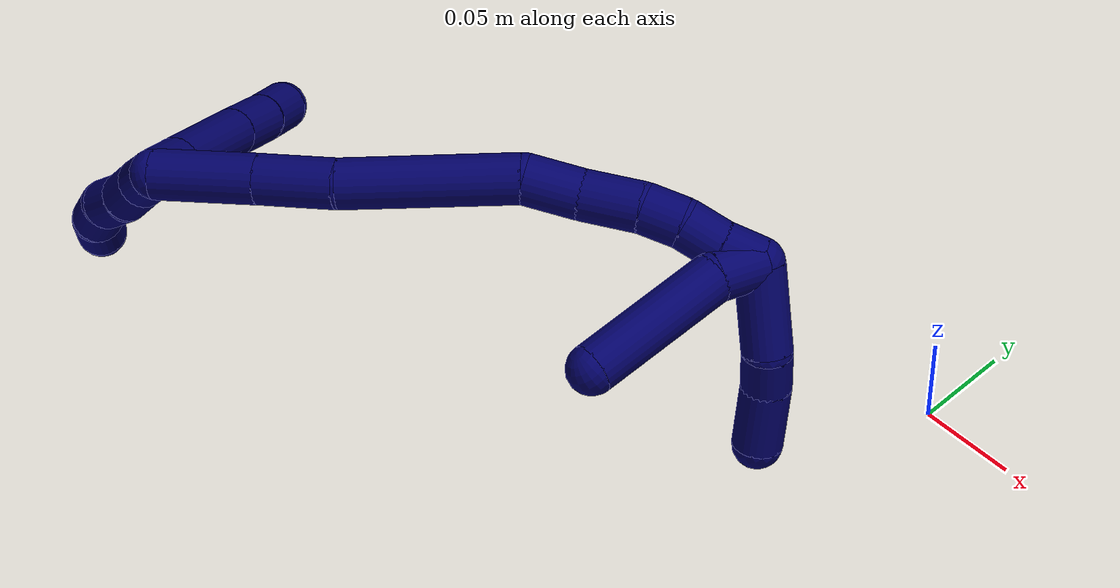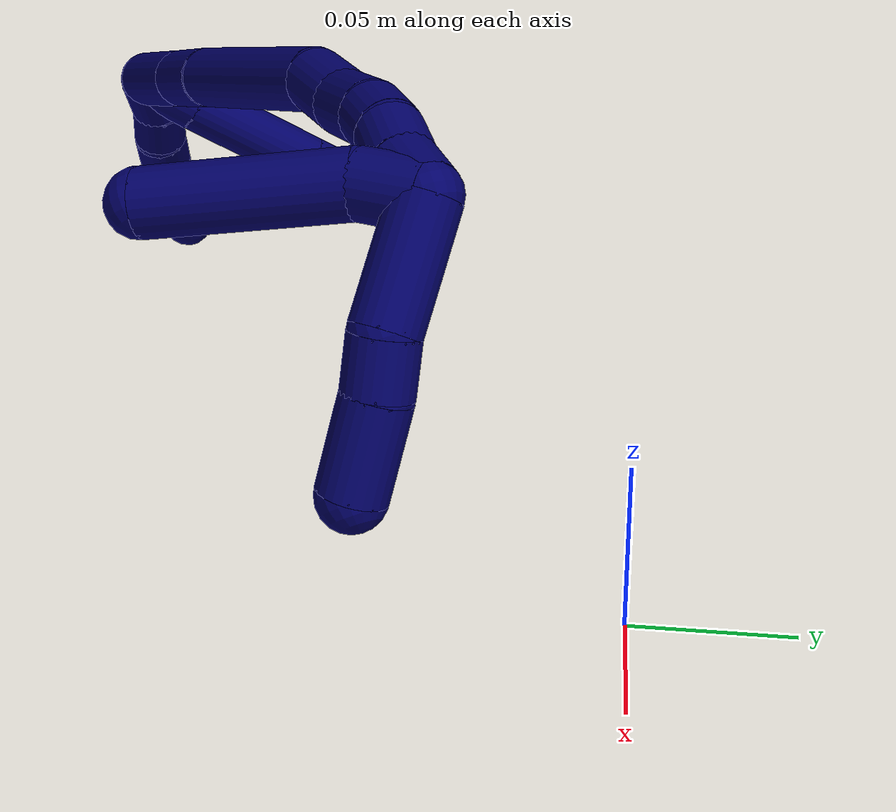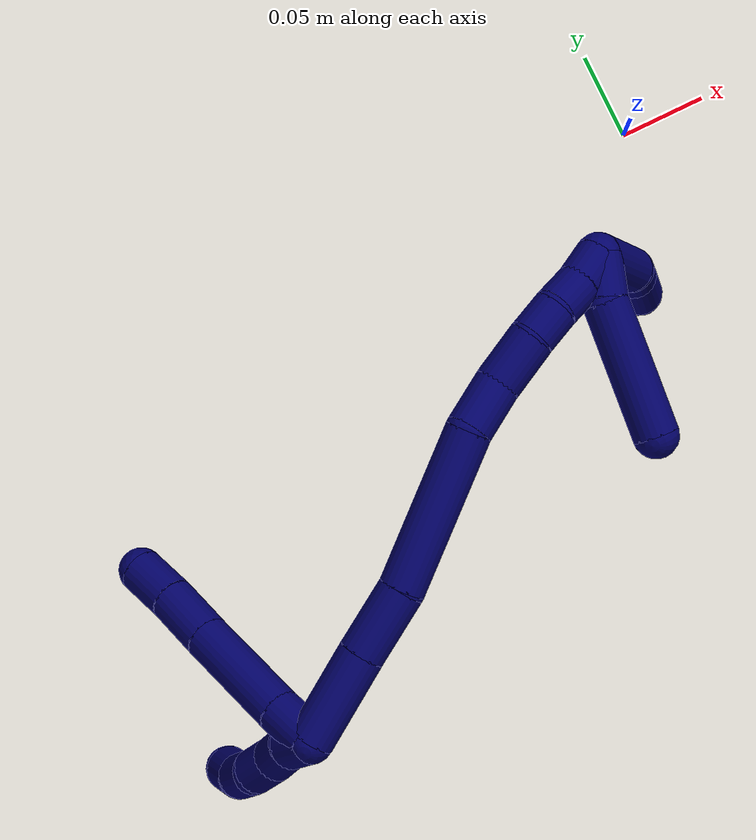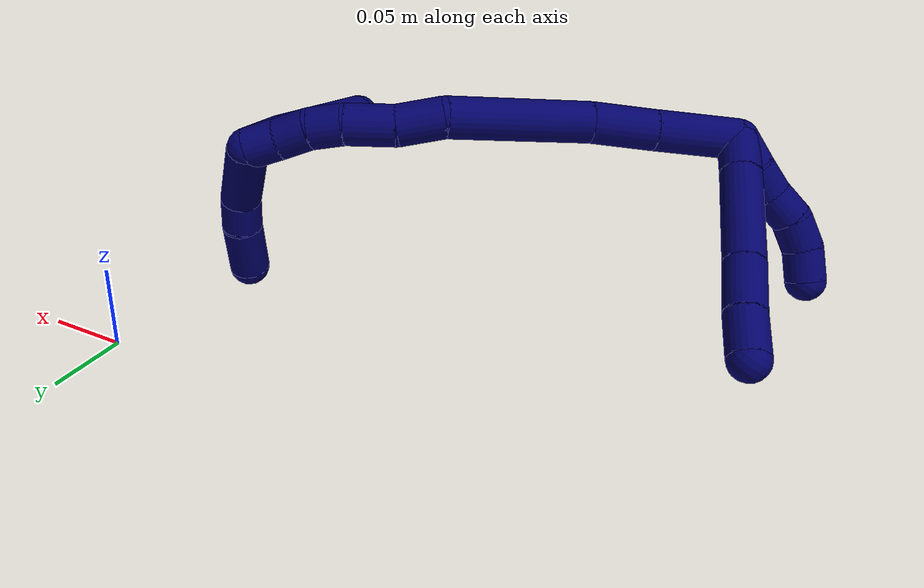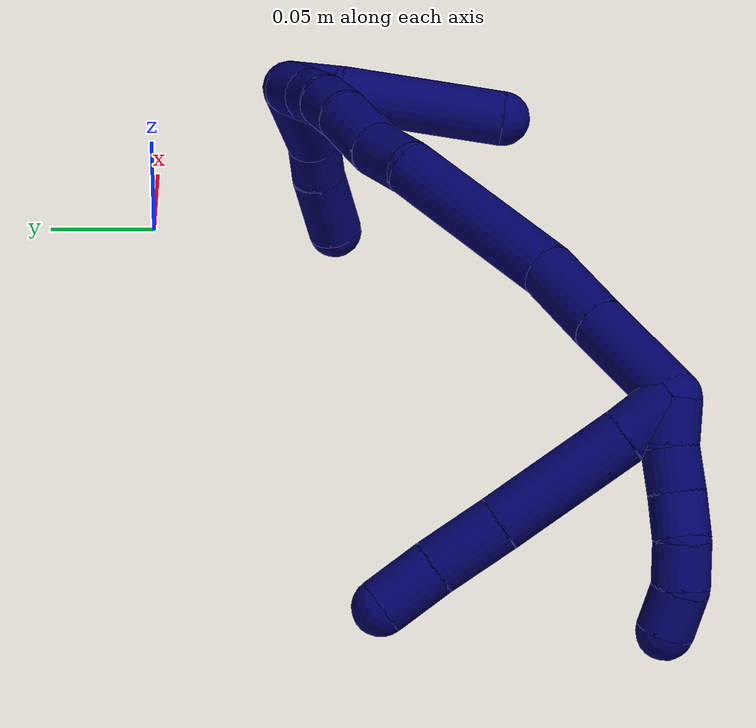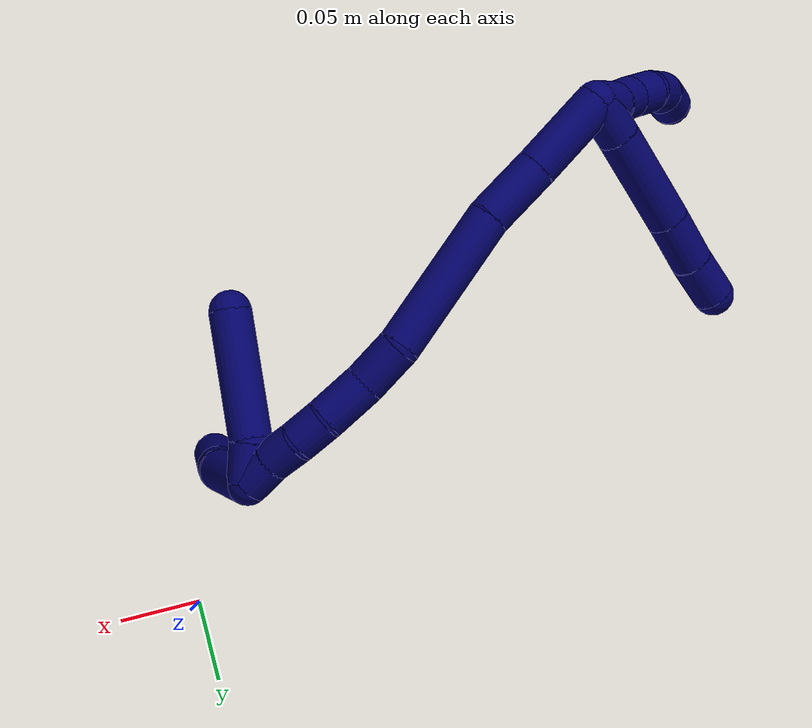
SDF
<sdf version="1.7">
 <world name="default">
  <model name="7">
   <static>0</static>
   <link name="7">
    <collision name="collision-cylinder-e_1_2_8">
     <pose>-0.007133 0.008145 -0.007088 -2.28689 -0.583856 1.16656</pose>
     <geometry><cylinder><radius>0.0125</radius><length>0.025881</length></cylinder></geometry>
     <surface>
      <friction><ode><mu>1.16</mu><mu2>1.16</mu2><slip1>0</slip1><slip2>0</slip2></ode></friction>
      <contact><ode><kp>1e+06</kp><kd>1</kd><max_vel>0</max_vel><min_depth>0.001</min_depth></ode></contact>
     </surface>
    </collision>
    <visual name="visual-cylinder-e_1_2_8">
     <pose>-0.007133 0.008145 -0.007088 -2.28689 -0.583856 1.16656</pose>
     <geometry><cylinder><radius>0.0125</radius><length>0.025881</length></cylinder></geometry>
     <material><ambient>0.003922 0 0.403922 1</ambient></material>
    </visual>
    <collision name="collision-cylinder-e_2_8_9">
     <pose>-0.030525 0.037194 -0.031626 -2.26641 -0.53824 1.06538</pose>
     <geometry><cylinder><radius>0.0125</radius><length>0.063429</length></cylinder></geometry>
     <surface>
      <friction><ode><mu>1.16</mu><mu2>1.16</mu2><slip1>0</slip1><slip2>0</slip2></ode></friction>
      <contact><ode><kp>1e+06</kp><kd>1</kd><max_vel>0</max_vel><min_depth>0.001</min_depth></ode></contact>
     </surface>
    </collision>
    <visual name="visual-cylinder-e_2_8_9">
     <pose>-0.030525 0.037194 -0.031626 -2.26641 -0.53824 1.06538</pose>
     <geometry><cylinder><radius>0.0125</radius><length>0.063429</length></cylinder></geometry>
     <material><ambient>0.003922 0 0.403922 1</ambient></material>
    </visual>
    <collision name="collision-cylinder-e_3_9_10">
     <pose>-0.054893 0.069052 -0.058295 -2.27033 -0.515457 1.03055</pose>
     <geometry><cylinder><radius>0.0125</radius><length>0.032909</length></cylinder></geometry>
     <surface>
      <friction><ode><mu>1.16</mu><mu2>1.16</mu2><slip1>0</slip1><slip2>0</slip2></ode></friction>
      <contact><ode><kp>1e+06</kp><kd>1</kd><max_vel>0</max_vel><min_depth>0.001</min_depth></ode></contact>
     </surface>
    </collision>
    <visual name="visual-cylinder-e_3_9_10">
     <pose>-0.054893 0.069052 -0.058295 -2.27033 -0.515457 1.03055</pose>
     <geometry><cylinder><radius>0.0125</radius><length>0.032909</length></cylinder></geometry>
     <material><ambient>0.003922 0 0.403922 1</ambient></material>
    </visual>
    <collision name="collision-cylinder-e_4_10_6">
     <pose>-0.070568 0.08901 -0.074906 -2.2583 -0.575835 1.11918</pose>
     <geometry><cylinder><radius>0.0125</radius><length>0.027781</length></cylinder></geometry>
     <surface>
      <friction><ode><mu>1.16</mu><mu2>1.16</mu2><slip1>0</slip1><slip2>0</slip2></ode></friction>
      <contact><ode><kp>1e+06</kp><kd>1</kd><max_vel>0</max_vel><min_depth>0.001</min_depth></ode></contact>
     </surface>
    </collision>
    <visual name="visual-cylinder-e_4_10_6">
     <pose>-0.070568 0.08901 -0.074906 -2.2583 -0.575835 1.11918</pose>
     <geometry><cylinder><radius>0.0125</radius><length>0.027781</length></cylinder></geometry>
     <material><ambient>0.003922 0 0.403922 1</ambient></material>
    </visual>
    <collision name="collision-cylinder-e_1_2_11">
     <pose>-0.009047 -0.000912 -0.004161 2.9258 -1.13075 -2.80342</pose>
     <geometry><cylinder><radius>0.0125</radius><length>0.02</length></cylinder></geometry>
     <surface>
      <friction><ode><mu>1.16</mu><mu2>1.16</mu2><slip1>0</slip1><slip2>0</slip2></ode></friction>
      <contact><ode><kp>1e+06</kp><kd>1</kd><max_vel>0</max_vel><min_depth>0.001</min_depth></ode></contact>
     </surface>
    </collision>
    <visual name="visual-cylinder-e_1_2_11">
     <pose>-0.009047 -0.000912 -0.004161 2.9258 -1.13075 -2.80342</pose>
     <geometry><cylinder><radius>0.0125</radius><length>0.02</length></cylinder></geometry>
     <material><ambient>0.003922 0 0.403922 1</ambient></material>
    </visual>
    <collision name="collision-cylinder-e_2_11_12">
     <pose>-0.026769 -0.005015 -0.01214 2.44545 -1.04993 -2.02225</pose>
     <geometry><cylinder><radius>0.0125</radius><length>0.02</length></cylinder></geometry>
     <surface>
      <friction><ode><mu>1.16</mu><mu2>1.16</mu2><slip1>0</slip1><slip2>0</slip2></ode></friction>
      <contact><ode><kp>1e+06</kp><kd>1</kd><max_vel>0</max_vel><min_depth>0.001</min_depth></ode></contact>
     </surface>
    </collision>
    <visual name="visual-cylinder-e_2_11_12">
     <pose>-0.026769 -0.005015 -0.01214 2.44545 -1.04993 -2.02225</pose>
     <geometry><cylinder><radius>0.0125</radius><length>0.02</length></cylinder></geometry>
     <material><ambient>0.003922 0 0.403922 1</ambient></material>
    </visual>
    <collision name="collision-cylinder-e_3_12_13">
     <pose>-0.044935 -0.010273 -0.01833 2.42476 -1.25089 -2.18457</pose>
     <geometry><cylinder><radius>0.0125</radius><length>0.02</length></cylinder></geometry>
     <surface>
      <friction><ode><mu>1.16</mu><mu2>1.16</mu2><slip1>0</slip1><slip2>0</slip2></ode></friction>
      <contact><ode><kp>1e+06</kp><kd>1</kd><max_vel>0</max_vel><min_depth>0.001</min_depth></ode></contact>
     </surface>
    </collision>
    <visual name="visual-cylinder-e_3_12_13">
     <pose>-0.044935 -0.010273 -0.01833 2.42476 -1.25089 -2.18457</pose>
     <geometry><cylinder><radius>0.0125</radius><length>0.02</length></cylinder></geometry>
     <material><ambient>0.003922 0 0.403922 1</ambient></material>
    </visual>
    <collision name="collision-cylinder-e_4_13_14">
     <pose>-0.062645 -0.014234 -0.026074 2.80254 -0.964492 -2.50952</pose>
     <geometry><cylinder><radius>0.0125</radius><length>0.02</length></cylinder></geometry>
     <surface>
      <friction><ode><mu>1.16</mu><mu2>1.16</mu2><slip1>0</slip1><slip2>0</slip2></ode></friction>
      <contact><ode><kp>1e+06</kp><kd>1</kd><max_vel>0</max_vel><min_depth>0.001</min_depth></ode></contact>
     </surface>
    </collision>
    <visual name="visual-cylinder-e_4_13_14">
     <pose>-0.062645 -0.014234 -0.026074 2.80254 -0.964492 -2.50952</pose>
     <geometry><cylinder><radius>0.0125</radius><length>0.02</length></cylinder></geometry>
     <material><ambient>0.003922 0 0.403922 1</ambient></material>
    </visual>
    <collision name="collision-cylinder-e_5_14_5">
     <pose>-0.077563 -0.015771 -0.038863 -3.09333 -0.734229 3.01622</pose>
     <geometry><cylinder><radius>0.0125</radius><length>0.02</length></cylinder></geometry>
     <surface>
      <friction><ode><mu>1.16</mu><mu2>1.16</mu2><slip1>0</slip1><slip2>0</slip2></ode></friction>
      <contact><ode><kp>1e+06</kp><kd>1</kd><max_vel>0</max_vel><min_depth>0.001</min_depth></ode></contact>
     </surface>
    </collision>
    <visual name="visual-cylinder-e_5_14_5">
     <pose>-0.077563 -0.015771 -0.038863 -3.09333 -0.734229 3.01622</pose>
     <geometry><cylinder><radius>0.0125</radius><length>0.02</length></cylinder></geometry>
     <material><ambient>0.003922 0 0.403922 1</ambient></material>
    </visual>
    <collision name="collision-cylinder-e_1_2_15">
     <pose>0.020755 0.011474 -0.011412 -2.35348 0.908525 -1.73087</pose>
     <geometry><cylinder><radius>0.0125</radius><length>0.052637</length></cylinder></geometry>
     <surface>
      <friction><ode><mu>1.16</mu><mu2>1.16</mu2><slip1>0</slip1><slip2>0</slip2></ode></friction>
      <contact><ode><kp>1e+06</kp><kd>1</kd><max_vel>0</max_vel><min_depth>0.001</min_depth></ode></contact>
     </surface>
    </collision>
    <visual name="visual-cylinder-e_1_2_15">
     <pose>0.020755 0.011474 -0.011412 -2.35348 0.908525 -1.73087</pose>
     <geometry><cylinder><radius>0.0125</radius><length>0.052637</length></cylinder></geometry>
     <material><ambient>0.003922 0 0.403922 1</ambient></material>
    </visual>
    <collision name="collision-cylinder-e_2_15_16">
     <pose>0.057364 0.031189 -0.031272 -2.36863 0.93095 -1.77974</pose>
     <geometry><cylinder><radius>0.0125</radius><length>0.039528</length></cylinder></geometry>
     <surface>
      <friction><ode><mu>1.16</mu><mu2>1.16</mu2><slip1>0</slip1><slip2>0</slip2></ode></friction>
      <contact><ode><kp>1e+06</kp><kd>1</kd><max_vel>0</max_vel><min_depth>0.001</min_depth></ode></contact>
     </surface>
    </collision>
    <visual name="visual-cylinder-e_2_15_16">
     <pose>0.057364 0.031189 -0.031272 -2.36863 0.93095 -1.77974</pose>
     <geometry><cylinder><radius>0.0125</radius><length>0.039528</length></cylinder></geometry>
     <material><ambient>0.003922 0 0.403922 1</ambient></material>
    </visual>
    <collision name="collision-cylinder-e_3_16_17">
     <pose>0.104594 0.063355 -0.060174 -2.27814 0.783774 -1.46231</pose>
     <geometry><cylinder><radius>0.0125</radius><length>0.088889</length></cylinder></geometry>
     <surface>
      <friction><ode><mu>1.16</mu><mu2>1.16</mu2><slip1>0</slip1><slip2>0</slip2></ode></friction>
      <contact><ode><kp>1e+06</kp><kd>1</kd><max_vel>0</max_vel><min_depth>0.001</min_depth></ode></contact>
     </surface>
    </collision>
    <visual name="visual-cylinder-e_3_16_17">
     <pose>0.104594 0.063355 -0.060174 -2.27814 0.783774 -1.46231</pose>
     <geometry><cylinder><radius>0.0125</radius><length>0.088889</length></cylinder></geometry>
     <material><ambient>0.003922 0 0.403922 1</ambient></material>
    </visual>
    <collision name="collision-cylinder-e_4_17_18">
     <pose>0.145326 0.091892 -0.090323 -2.69762 0.716942 -2.05718</pose>
     <geometry><cylinder><radius>0.0125</radius><length>0.02848</length></cylinder></geometry>
     <surface>
      <friction><ode><mu>1.16</mu><mu2>1.16</mu2><slip1>0</slip1><slip2>0</slip2></ode></friction>
      <contact><ode><kp>1e+06</kp><kd>1</kd><max_vel>0</max_vel><min_depth>0.001</min_depth></ode></contact>
     </surface>
    </collision>
    <visual name="visual-cylinder-e_4_17_18">
     <pose>0.145326 0.091892 -0.090323 -2.69762 0.716942 -2.05718</pose>
     <geometry><cylinder><radius>0.0125</radius><length>0.02848</length></cylinder></geometry>
     <material><ambient>0.003922 0 0.403922 1</ambient></material>
    </visual>
    <collision name="collision-cylinder-e_5_18_19">
     <pose>0.166602 0.101188 -0.108057 -2.61391 0.907883 -2.13031</pose>
     <geometry><cylinder><radius>0.0125</radius><length>0.030244</length></cylinder></geometry>
     <surface>
      <friction><ode><mu>1.16</mu><mu2>1.16</mu2><slip1>0</slip1><slip2>0</slip2></ode></friction>
      <contact><ode><kp>1e+06</kp><kd>1</kd><max_vel>0</max_vel><min_depth>0.001</min_depth></ode></contact>
     </surface>
    </collision>
    <visual name="visual-cylinder-e_5_18_19">
     <pose>0.166602 0.101188 -0.108057 -2.61391 0.907883 -2.13031</pose>
     <geometry><cylinder><radius>0.0125</radius><length>0.030244</length></cylinder></geometry>
     <material><ambient>0.003922 0 0.403922 1</ambient></material>
    </visual>
    <collision name="collision-cylinder-e_6_19_20">
     <pose>0.185708 0.107965 -0.122851 -2.84145 0.793507 -2.44888</pose>
     <geometry><cylinder><radius>0.0125</radius><length>0.020163</length></cylinder></geometry>
     <surface>
      <friction><ode><mu>1.16</mu><mu2>1.16</mu2><slip1>0</slip1><slip2>0</slip2></ode></friction>
      <contact><ode><kp>1e+06</kp><kd>1</kd><max_vel>0</max_vel><min_depth>0.001</min_depth></ode></contact>
     </surface>
    </collision>
    <visual name="visual-cylinder-e_6_19_20">
     <pose>0.185708 0.107965 -0.122851 -2.84145 0.793507 -2.44888</pose>
     <geometry><cylinder><radius>0.0125</radius><length>0.020163</length></cylinder></geometry>
     <material><ambient>0.003922 0 0.403922 1</ambient></material>
    </visual>
    <collision name="collision-cylinder-e_7_20_21">
     <pose>0.198865 0.110869 -0.137623 -3.04045 0.637692 -2.83731</pose>
     <geometry><cylinder><radius>0.0125</radius><length>0.020058</length></cylinder></geometry>
     <surface>
      <friction><ode><mu>1.16</mu><mu2>1.16</mu2><slip1>0</slip1><slip2>0</slip2></ode></friction>
      <contact><ode><kp>1e+06</kp><kd>1</kd><max_vel>0</max_vel><min_depth>0.001</min_depth></ode></contact>
     </surface>
    </collision>
    <visual name="visual-cylinder-e_7_20_21">
     <pose>0.198865 0.110869 -0.137623 -3.04045 0.637692 -2.83731</pose>
     <geometry><cylinder><radius>0.0125</radius><length>0.020058</length></cylinder></geometry>
     <material><ambient>0.003922 0 0.403922 1</ambient></material>
    </visual>
    <collision name="collision-cylinder-e_8_21_1">
     <pose>0.210711 0.113926 -0.153415 -2.86072 0.628014 -2.32046</pose>
     <geometry><cylinder><radius>0.0125</radius><length>0.020002</length></cylinder></geometry>
     <surface>
      <friction><ode><mu>1.16</mu><mu2>1.16</mu2><slip1>0</slip1><slip2>0</slip2></ode></friction>
      <contact><ode><kp>1e+06</kp><kd>1</kd><max_vel>0</max_vel><min_depth>0.001</min_depth></ode></contact>
     </surface>
    </collision>
    <visual name="visual-cylinder-e_8_21_1">
     <pose>0.210711 0.113926 -0.153415 -2.86072 0.628014 -2.32046</pose>
     <geometry><cylinder><radius>0.0125</radius><length>0.020002</length></cylinder></geometry>
     <material><ambient>0.003922 0 0.403922 1</ambient></material>
    </visual>
    <collision name="collision-cylinder-e_1_1_22">
     <pose>0.213811 0.106178 -0.154759 0.998776 -0.229562 -0.125615</pose>
     <geometry><cylinder><radius>0.0125</radius><length>0.024405</length></cylinder></geometry>
     <surface>
      <friction><ode><mu>1.16</mu><mu2>1.16</mu2><slip1>0</slip1><slip2>0</slip2></ode></friction>
      <contact><ode><kp>1e+06</kp><kd>1</kd><max_vel>0</max_vel><min_depth>0.001</min_depth></ode></contact>
     </surface>
    </collision>
    <visual name="visual-cylinder-e_1_1_22">
     <pose>0.213811 0.106178 -0.154759 0.998776 -0.229562 -0.125615</pose>
     <geometry><cylinder><radius>0.0125</radius><length>0.024405</length></cylinder></geometry>
     <material><ambient>0.003922 0 0.403922 1</ambient></material>
    </visual>
    <collision name="collision-cylinder-e_2_22_4">
     <pose>0.206673 0.060068 -0.138078 1.29434 -0.11563 -0.087429</pose>
     <geometry><cylinder><radius>0.0125</radius><length>0.075595</length></cylinder></geometry>
     <surface>
      <friction><ode><mu>1.16</mu><mu2>1.16</mu2><slip1>0</slip1><slip2>0</slip2></ode></friction>
      <contact><ode><kp>1e+06</kp><kd>1</kd><max_vel>0</max_vel><min_depth>0.001</min_depth></ode></contact>
     </surface>
    </collision>
    <visual name="visual-cylinder-e_2_22_4">
     <pose>0.206673 0.060068 -0.138078 1.29434 -0.11563 -0.087429</pose>
     <geometry><cylinder><radius>0.0125</radius><length>0.075595</length></cylinder></geometry>
     <material><ambient>0.003922 0 0.403922 1</ambient></material>
    </visual>
    <collision name="collision-cylinder-e_1_1_23">
     <pose>0.215202 0.103288 -0.179859 2.53762 -0.061021 -0.195321</pose>
     <geometry><cylinder><radius>0.0125</radius><length>0.045446</length></cylinder></geometry>
     <surface>
      <friction><ode><mu>1.16</mu><mu2>1.16</mu2><slip1>0</slip1><slip2>0</slip2></ode></friction>
      <contact><ode><kp>1e+06</kp><kd>1</kd><max_vel>0</max_vel><min_depth>0.001</min_depth></ode></contact>
     </surface>
    </collision>
    <visual name="visual-cylinder-e_1_1_23">
     <pose>0.215202 0.103288 -0.179859 2.53762 -0.061021 -0.195321</pose>
     <geometry><cylinder><radius>0.0125</radius><length>0.045446</length></cylinder></geometry>
     <material><ambient>0.003922 0 0.403922 1</ambient></material>
    </visual>
    <collision name="collision-cylinder-e_2_23_24">
     <pose>0.210293 0.086016 -0.207107 2.66851 -0.350437 -1.2669</pose>
     <geometry><cylinder><radius>0.0125</radius><length>0.020524</length></cylinder></geometry>
     <surface>
      <friction><ode><mu>1.16</mu><mu2>1.16</mu2><slip1>0</slip1><slip2>0</slip2></ode></friction>
      <contact><ode><kp>1e+06</kp><kd>1</kd><max_vel>0</max_vel><min_depth>0.001</min_depth></ode></contact>
     </surface>
    </collision>
    <visual name="visual-cylinder-e_2_23_24">
     <pose>0.210293 0.086016 -0.207107 2.66851 -0.350437 -1.2669</pose>
     <geometry><cylinder><radius>0.0125</radius><length>0.020524</length></cylinder></geometry>
     <material><ambient>0.003922 0 0.403922 1</ambient></material>
    </visual>
    <collision name="collision-cylinder-e_3_24_3">
     <pose>0.2008 0.072436 -0.228704 2.52692 -0.358461 -1.03737</pose>
     <geometry><cylinder><radius>0.0125</radius><length>0.034029</length></cylinder></geometry>
     <surface>
      <friction><ode><mu>1.16</mu><mu2>1.16</mu2><slip1>0</slip1><slip2>0</slip2></ode></friction>
      <contact><ode><kp>1e+06</kp><kd>1</kd><max_vel>0</max_vel><min_depth>0.001</min_depth></ode></contact>
     </surface>
    </collision>
    <visual name="visual-cylinder-e_3_24_3">
     <pose>0.2008 0.072436 -0.228704 2.52692 -0.358461 -1.03737</pose>
     <geometry><cylinder><radius>0.0125</radius><length>0.034029</length></cylinder></geometry>
     <material><ambient>0.003922 0 0.403922 1</ambient></material>
    </visual>
    <collision name="collision-sphere-3">
     <pose>0.194831 0.063247 -0.241721 0 -0 0</pose>
     <geometry><sphere><radius>0.0125</radius></sphere></geometry>
     <surface>
      <friction><ode><mu>1.16</mu><mu2>1.16</mu2><slip1>0</slip1><slip2>0</slip2></ode></friction>
      <contact><ode><kp>1e+06</kp><kd>1</kd><max_vel>0</max_vel><min_depth>0.001</min_depth></ode></contact>
     </surface>
    </collision>
    <visual name="visual-sphere-3">
     <pose>0.194831 0.063247 -0.241721 0 -0 0</pose>
     <geometry><sphere><radius>0.0125</radius></sphere></geometry>
     <material><ambient>0.003922 0 0.403922 1</ambient></material>
    </visual>
    <collision name="collision-sphere-24">
     <pose>0.20677 0.081624 -0.215687 0 -0 0</pose>
     <geometry><sphere><radius>0.0125</radius></sphere></geometry>
     <surface>
      <friction><ode><mu>1.16</mu><mu2>1.16</mu2><slip1>0</slip1><slip2>0</slip2></ode></friction>
      <contact><ode><kp>1e+06</kp><kd>1</kd><max_vel>0</max_vel><min_depth>0.001</min_depth></ode></contact>
     </surface>
    </collision>
    <visual name="visual-sphere-24">
     <pose>0.20677 0.081624 -0.215687 0 -0 0</pose>
     <geometry><sphere><radius>0.0125</radius></sphere></geometry>
     <material><ambient>0.003922 0 0.403922 1</ambient></material>
    </visual>
    <collision name="collision-sphere-23">
     <pose>0.213816 0.090407 -0.198528 0 -0 0</pose>
     <geometry><sphere><radius>0.0125</radius></sphere></geometry>
     <surface>
      <friction><ode><mu>1.16</mu><mu2>1.16</mu2><slip1>0</slip1><slip2>0</slip2></ode></friction>
      <contact><ode><kp>1e+06</kp><kd>1</kd><max_vel>0</max_vel><min_depth>0.001</min_depth></ode></contact>
     </surface>
    </collision>
    <visual name="visual-sphere-23">
     <pose>0.213816 0.090407 -0.198528 0 -0 0</pose>
     <geometry><sphere><radius>0.0125</radius></sphere></geometry>
     <material><ambient>0.003922 0 0.403922 1</ambient></material>
    </visual>
    <collision name="collision-sphere-4">
     <pose>0.202312 0.023949 -0.12783 0 -0 0</pose>
     <geometry><sphere><radius>0.0125</radius></sphere></geometry>
     <surface>
      <friction><ode><mu>1.16</mu><mu2>1.16</mu2><slip1>0</slip1><slip2>0</slip2></ode></friction>
      <contact><ode><kp>1e+06</kp><kd>1</kd><max_vel>0</max_vel><min_depth>0.001</min_depth></ode></contact>
     </surface>
    </collision>
    <visual name="visual-sphere-4">
     <pose>0.202312 0.023949 -0.12783 0 -0 0</pose>
     <geometry><sphere><radius>0.0125</radius></sphere></geometry>
     <material><ambient>0.003922 0 0.403922 1</ambient></material>
    </visual>
    <collision name="collision-sphere-22">
     <pose>0.211034 0.096187 -0.148326 0 -0 0</pose>
     <geometry><sphere><radius>0.0125</radius></sphere></geometry>
     <surface>
      <friction><ode><mu>1.16</mu><mu2>1.16</mu2><slip1>0</slip1><slip2>0</slip2></ode></friction>
      <contact><ode><kp>1e+06</kp><kd>1</kd><max_vel>0</max_vel><min_depth>0.001</min_depth></ode></contact>
     </surface>
    </collision>
    <visual name="visual-sphere-22">
     <pose>0.211034 0.096187 -0.148326 0 -0 0</pose>
     <geometry><sphere><radius>0.0125</radius></sphere></geometry>
     <material><ambient>0.003922 0 0.403922 1</ambient></material>
    </visual>
    <collision name="collision-sphere-1">
     <pose>0.216587 0.116169 -0.161191 0 -0 0</pose>
     <geometry><sphere><radius>0.0125</radius></sphere></geometry>
     <surface>
      <friction><ode><mu>1.16</mu><mu2>1.16</mu2><slip1>0</slip1><slip2>0</slip2></ode></friction>
      <contact><ode><kp>1e+06</kp><kd>1</kd><max_vel>0</max_vel><min_depth>0.001</min_depth></ode></contact>
     </surface>
    </collision>
    <visual name="visual-sphere-1">
     <pose>0.216587 0.116169 -0.161191 0 -0 0</pose>
     <geometry><sphere><radius>0.0125</radius></sphere></geometry>
     <material><ambient>0.003922 0 0.403922 1</ambient></material>
    </visual>
    <collision name="collision-sphere-21">
     <pose>0.204835 0.111683 -0.145639 0 -0 0</pose>
     <geometry><sphere><radius>0.0125</radius></sphere></geometry>
     <surface>
      <friction><ode><mu>1.16</mu><mu2>1.16</mu2><slip1>0</slip1><slip2>0</slip2></ode></friction>
      <contact><ode><kp>1e+06</kp><kd>1</kd><max_vel>0</max_vel><min_depth>0.001</min_depth></ode></contact>
     </surface>
    </collision>
    <visual name="visual-sphere-21">
     <pose>0.204835 0.111683 -0.145639 0 -0 0</pose>
     <geometry><sphere><radius>0.0125</radius></sphere></geometry>
     <material><ambient>0.003922 0 0.403922 1</ambient></material>
    </visual>
    <collision name="collision-sphere-11">
     <pose>-0.018095 -0.001824 -0.008322 0 -0 0</pose>
     <geometry><sphere><radius>0.0125</radius></sphere></geometry>
     <surface>
      <friction><ode><mu>1.16</mu><mu2>1.16</mu2><slip1>0</slip1><slip2>0</slip2></ode></friction>
      <contact><ode><kp>1e+06</kp><kd>1</kd><max_vel>0</max_vel><min_depth>0.001</min_depth></ode></contact>
     </surface>
    </collision>
    <visual name="visual-sphere-11">
     <pose>-0.018095 -0.001824 -0.008322 0 -0 0</pose>
     <geometry><sphere><radius>0.0125</radius></sphere></geometry>
     <material><ambient>0.003922 0 0.403922 1</ambient></material>
    </visual>
    <collision name="collision-sphere-6">
     <pose>-0.078132 0.098013 -0.082299 0 -0 0</pose>
     <geometry><sphere><radius>0.0125</radius></sphere></geometry>
     <surface>
      <friction><ode><mu>1.16</mu><mu2>1.16</mu2><slip1>0</slip1><slip2>0</slip2></ode></friction>
      <contact><ode><kp>1e+06</kp><kd>1</kd><max_vel>0</max_vel><min_depth>0.001</min_depth></ode></contact>
     </surface>
    </collision>
    <visual name="visual-sphere-6">
     <pose>-0.078132 0.098013 -0.082299 0 -0 0</pose>
     <geometry><sphere><radius>0.0125</radius></sphere></geometry>
     <material><ambient>0.003922 0 0.403922 1</ambient></material>
    </visual>
    <collision name="collision-sphere-10">
     <pose>-0.063004 0.080006 -0.067512 0 -0 0</pose>
     <geometry><sphere><radius>0.0125</radius></sphere></geometry>
     <surface>
      <friction><ode><mu>1.16</mu><mu2>1.16</mu2><slip1>0</slip1><slip2>0</slip2></ode></friction>
      <contact><ode><kp>1e+06</kp><kd>1</kd><max_vel>0</max_vel><min_depth>0.001</min_depth></ode></contact>
     </surface>
    </collision>
    <visual name="visual-sphere-10">
     <pose>-0.063004 0.080006 -0.067512 0 -0 0</pose>
     <geometry><sphere><radius>0.0125</radius></sphere></geometry>
     <material><ambient>0.003922 0 0.403922 1</ambient></material>
    </visual>
    <collision name="collision-sphere-9">
     <pose>-0.046782 0.058098 -0.049077 0 -0 0</pose>
     <geometry><sphere><radius>0.0125</radius></sphere></geometry>
     <surface>
      <friction><ode><mu>1.16</mu><mu2>1.16</mu2><slip1>0</slip1><slip2>0</slip2></ode></friction>
      <contact><ode><kp>1e+06</kp><kd>1</kd><max_vel>0</max_vel><min_depth>0.001</min_depth></ode></contact>
     </surface>
    </collision>
    <visual name="visual-sphere-9">
     <pose>-0.046782 0.058098 -0.049077 0 -0 0</pose>
     <geometry><sphere><radius>0.0125</radius></sphere></geometry>
     <material><ambient>0.003922 0 0.403922 1</ambient></material>
    </visual>
    <collision name="collision-sphere-2">
     <geometry><sphere><radius>0.0125</radius></sphere></geometry>
     <surface>
      <friction><ode><mu>1.16</mu><mu2>1.16</mu2><slip1>0</slip1><slip2>0</slip2></ode></friction>
      <contact><ode><kp>1e+06</kp><kd>1</kd><max_vel>0</max_vel><min_depth>0.001</min_depth></ode></contact>
     </surface>
    </collision>
    <visual name="visual-sphere-2">
     <geometry><sphere><radius>0.0125</radius></sphere></geometry>
     <material><ambient>0.003922 0 0.403922 1</ambient></material>
    </visual>
    <collision name="collision-sphere-19">
     <pose>0.178522 0.105874 -0.116097 0 -0 0</pose>
     <geometry><sphere><radius>0.0125</radius></sphere></geometry>
     <surface>
      <friction><ode><mu>1.16</mu><mu2>1.16</mu2><slip1>0</slip1><slip2>0</slip2></ode></friction>
      <contact><ode><kp>1e+06</kp><kd>1</kd><max_vel>0</max_vel><min_depth>0.001</min_depth></ode></contact>
     </surface>
    </collision>
    <visual name="visual-sphere-19">
     <pose>0.178522 0.105874 -0.116097 0 -0 0</pose>
     <geometry><sphere><radius>0.0125</radius></sphere></geometry>
     <material><ambient>0.003922 0 0.403922 1</ambient></material>
    </visual>
    <collision name="collision-sphere-8">
     <pose>-0.014267 0.01629 -0.014175 0 -0 0</pose>
     <geometry><sphere><radius>0.0125</radius></sphere></geometry>
     <surface>
      <friction><ode><mu>1.16</mu><mu2>1.16</mu2><slip1>0</slip1><slip2>0</slip2></ode></friction>
      <contact><ode><kp>1e+06</kp><kd>1</kd><max_vel>0</max_vel><min_depth>0.001</min_depth></ode></contact>
     </surface>
    </collision>
    <visual name="visual-sphere-8">
     <pose>-0.014267 0.01629 -0.014175 0 -0 0</pose>
     <geometry><sphere><radius>0.0125</radius></sphere></geometry>
     <material><ambient>0.003922 0 0.403922 1</ambient></material>
    </visual>
    <collision name="collision-sphere-12">
     <pose>-0.035442 -0.008207 -0.015959 0 -0 0</pose>
     <geometry><sphere><radius>0.0125</radius></sphere></geometry>
     <surface>
      <friction><ode><mu>1.16</mu><mu2>1.16</mu2><slip1>0</slip1><slip2>0</slip2></ode></friction>
      <contact><ode><kp>1e+06</kp><kd>1</kd><max_vel>0</max_vel><min_depth>0.001</min_depth></ode></contact>
     </surface>
    </collision>
    <visual name="visual-sphere-12">
     <pose>-0.035442 -0.008207 -0.015959 0 -0 0</pose>
     <geometry><sphere><radius>0.0125</radius></sphere></geometry>
     <material><ambient>0.003922 0 0.403922 1</ambient></material>
    </visual>
    <collision name="collision-sphere-13">
     <pose>-0.054428 -0.012339 -0.020701 0 -0 0</pose>
     <geometry><sphere><radius>0.0125</radius></sphere></geometry>
     <surface>
      <friction><ode><mu>1.16</mu><mu2>1.16</mu2><slip1>0</slip1><slip2>0</slip2></ode></friction>
      <contact><ode><kp>1e+06</kp><kd>1</kd><max_vel>0</max_vel><min_depth>0.001</min_depth></ode></contact>
     </surface>
    </collision>
    <visual name="visual-sphere-13">
     <pose>-0.054428 -0.012339 -0.020701 0 -0 0</pose>
     <geometry><sphere><radius>0.0125</radius></sphere></geometry>
     <material><ambient>0.003922 0 0.403922 1</ambient></material>
    </visual>
    <collision name="collision-sphere-14">
     <pose>-0.070863 -0.016129 -0.031448 0 -0 0</pose>
     <geometry><sphere><radius>0.0125</radius></sphere></geometry>
     <surface>
      <friction><ode><mu>1.16</mu><mu2>1.16</mu2><slip1>0</slip1><slip2>0</slip2></ode></friction>
      <contact><ode><kp>1e+06</kp><kd>1</kd><max_vel>0</max_vel><min_depth>0.001</min_depth></ode></contact>
     </surface>
    </collision>
    <visual name="visual-sphere-14">
     <pose>-0.070863 -0.016129 -0.031448 0 -0 0</pose>
     <geometry><sphere><radius>0.0125</radius></sphere></geometry>
     <material><ambient>0.003922 0 0.403922 1</ambient></material>
    </visual>
    <collision name="collision-sphere-5">
     <pose>-0.084263 -0.015413 -0.046278 0 -0 0</pose>
     <geometry><sphere><radius>0.0125</radius></sphere></geometry>
     <surface>
      <friction><ode><mu>1.16</mu><mu2>1.16</mu2><slip1>0</slip1><slip2>0</slip2></ode></friction>
      <contact><ode><kp>1e+06</kp><kd>1</kd><max_vel>0</max_vel><min_depth>0.001</min_depth></ode></contact>
     </surface>
    </collision>
    <visual name="visual-sphere-5">
     <pose>-0.084263 -0.015413 -0.046278 0 -0 0</pose>
     <geometry><sphere><radius>0.0125</radius></sphere></geometry>
     <material><ambient>0.003922 0 0.403922 1</ambient></material>
    </visual>
    <collision name="collision-sphere-15">
     <pose>0.041509 0.022949 -0.022825 0 -0 0</pose>
     <geometry><sphere><radius>0.0125</radius></sphere></geometry>
     <surface>
      <friction><ode><mu>1.16</mu><mu2>1.16</mu2><slip1>0</slip1><slip2>0</slip2></ode></friction>
      <contact><ode><kp>1e+06</kp><kd>1</kd><max_vel>0</max_vel><min_depth>0.001</min_depth></ode></contact>
     </surface>
    </collision>
    <visual name="visual-sphere-15">
     <pose>0.041509 0.022949 -0.022825 0 -0 0</pose>
     <geometry><sphere><radius>0.0125</radius></sphere></geometry>
     <material><ambient>0.003922 0 0.403922 1</ambient></material>
    </visual>
    <collision name="collision-sphere-16">
     <pose>0.073218 0.039428 -0.039719 0 -0 0</pose>
     <geometry><sphere><radius>0.0125</radius></sphere></geometry>
     <surface>
      <friction><ode><mu>1.16</mu><mu2>1.16</mu2><slip1>0</slip1><slip2>0</slip2></ode></friction>
      <contact><ode><kp>1e+06</kp><kd>1</kd><max_vel>0</max_vel><min_depth>0.001</min_depth></ode></contact>
     </surface>
    </collision>
    <visual name="visual-sphere-16">
     <pose>0.073218 0.039428 -0.039719 0 -0 0</pose>
     <geometry><sphere><radius>0.0125</radius></sphere></geometry>
     <material><ambient>0.003922 0 0.403922 1</ambient></material>
    </visual>
    <collision name="collision-sphere-17">
     <pose>0.13597 0.087281 -0.080629 0 -0 0</pose>
     <geometry><sphere><radius>0.0125</radius></sphere></geometry>
     <surface>
      <friction><ode><mu>1.16</mu><mu2>1.16</mu2><slip1>0</slip1><slip2>0</slip2></ode></friction>
      <contact><ode><kp>1e+06</kp><kd>1</kd><max_vel>0</max_vel><min_depth>0.001</min_depth></ode></contact>
     </surface>
    </collision>
    <visual name="visual-sphere-17">
     <pose>0.13597 0.087281 -0.080629 0 -0 0</pose>
     <geometry><sphere><radius>0.0125</radius></sphere></geometry>
     <material><ambient>0.003922 0 0.403922 1</ambient></material>
    </visual>
    <collision name="collision-sphere-18">
     <pose>0.154683 0.096502 -0.100016 0 -0 0</pose>
     <geometry><sphere><radius>0.0125</radius></sphere></geometry>
     <surface>
      <friction><ode><mu>1.16</mu><mu2>1.16</mu2><slip1>0</slip1><slip2>0</slip2></ode></friction>
      <contact><ode><kp>1e+06</kp><kd>1</kd><max_vel>0</max_vel><min_depth>0.001</min_depth></ode></contact>
     </surface>
    </collision>
    <visual name="visual-sphere-18">
     <pose>0.154683 0.096502 -0.100016 0 -0 0</pose>
     <geometry><sphere><radius>0.0125</radius></sphere></geometry>
     <material><ambient>0.003922 0 0.403922 1</ambient></material>
    </visual>
    <collision name="collision-sphere-20">
     <pose>0.192894 0.110055 -0.129606 0 -0 0</pose>
     <geometry><sphere><radius>0.0125</radius></sphere></geometry>
     <surface>
      <friction><ode><mu>1.16</mu><mu2>1.16</mu2><slip1>0</slip1><slip2>0</slip2></ode></friction>
      <contact><ode><kp>1e+06</kp><kd>1</kd><max_vel>0</max_vel><min_depth>0.001</min_depth></ode></contact>
     </surface>
    </collision>
    <visual name="visual-sphere-20">
     <pose>0.192894 0.110055 -0.129606 0 -0 0</pose>
     <geometry><sphere><radius>0.0125</radius></sphere></geometry>
     <material><ambient>0.003922 0 0.403922 1</ambient></material>
    </visual>
    <inertial>
     <pose>0.086995 0.056364 -0.085246 0 -0 0</pose>
     <mass>0.75</mass>
     <inertia><ixx>1.3e-05</ixx><ixy>0</ixy><ixz>0</ixz><iyy>1.8e-05</iyy><iyz>0</iyz><izz>-8.2e-05</izz></inertia>
    </inertial>
   </link>
   <pose>-0.30257 -0.22931 0.112743 0.368853 -0.475142 -0.016305</pose>
  </model>
 </world>
</sdf>
